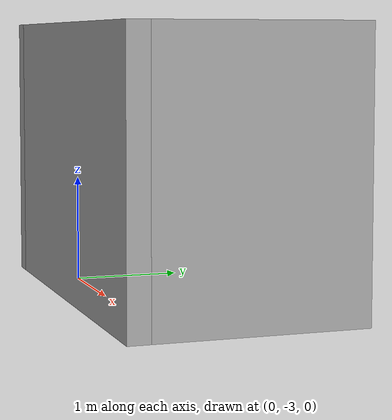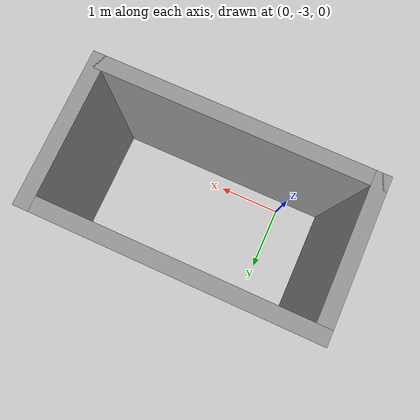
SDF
<?xml version='1.0'?>
<sdf version='1.5'>
  <model name='plumeWorld'>
    <link name='Wall_0'>
      <collision name='Wall_0_Collision'>
        <geometry>
          <box>
            <size>3.86 0.2 2.5</size>
          </box>
        </geometry>
        <pose>0 0 1.25 0 -0 0</pose>
      </collision>
      <visual name='Wall_0_Visual'>
        <pose>0 0 1.25 0 -0 0</pose>
        <geometry>
          <box>
            <size>3.86 0.2 2.5</size>
          </box>
        </geometry>
        <material>
          <script>
            <uri>file://media/materials/scripts/gazebo.material</uri>
            <name>Gazebo/Grey</name>
          </script>
        </material>
      </visual>
      <velocity_decay>
        <linear>0</linear>
        <angular>0</angular>
      </velocity_decay>
      <pose>1.08 -1.41 0 0 -0 0</pose>
    </link>
    <link name='Wall_1'>
      <collision name='Wall_1_Collision'>
        <geometry>
          <box>
            <size>2.08 0.2 2.5</size>
          </box>
        </geometry>
        <pose>0 0 1.25 0 -0 0</pose>
      </collision>
      <visual name='Wall_1_Visual'>
        <pose>0 0 1.25 0 -0 0</pose>
        <geometry>
          <box>
            <size>2.08 0.2 2.5</size>
          </box>
        </geometry>
        <material>
          <script>
            <uri>file://media/materials/scripts/gazebo.material</uri>
            <name>Gazebo/Grey</name>
          </script>
        </material>
      </visual>
      <velocity_decay>
        <linear>0</linear>
        <angular>0</angular>
      </velocity_decay>
      <pose>2.91 -2.35 0 0 0 -1.5708</pose>
    </link>
    <link name='Wall_2'>
      <collision name='Wall_2_Collision'>
        <geometry>
          <box>
            <size>3.86001 0.2 2.5</size>
          </box>
        </geometry>
        <pose>0 0 1.25 0 -0 0</pose>
      </collision>
      <visual name='Wall_2_Visual'>
        <pose>0 0 1.25 0 -0 0</pose>
        <geometry>
          <box>
            <size>3.86001 0.2 2.5</size>
          </box>
        </geometry>
        <material>
          <script>
            <uri>file://media/materials/scripts/gazebo.material</uri>
            <name>Gazebo/Grey</name>
          </script>
        </material>
      </visual>
      <velocity_decay>
        <linear>0</linear>
        <angular>0</angular>
      </velocity_decay>
      <pose>1.08 -3.29001 0 0 0 -3.14159</pose>
    </link>
    <link name='Wall_3'>
      <collision name='Wall_3_Collision'>
        <geometry>
          <box>
            <size>2.08003 0.2 2.5</size>
          </box>
        </geometry>
        <pose>0 0 1.25 0 -0 0</pose>
      </collision>
      <visual name='Wall_3_Visual'>
        <pose>0 0 1.25 0 -0 0</pose>
        <geometry>
          <box>
            <size>2.08003 0.2 2.5</size>
          </box>
        </geometry>
        <material>
          <script>
            <uri>file://media/materials/scripts/gazebo.material</uri>
            <name>Gazebo/Grey</name>
          </script>
        </material>
      </visual>
      <velocity_decay>
        <linear>0</linear>
        <angular>0</angular>
      </velocity_decay>
      <pose>-0.75 -2.35001 0 0 -0 1.5708</pose>
    </link>
    <static>1</static>
  </model>
</sdf>
